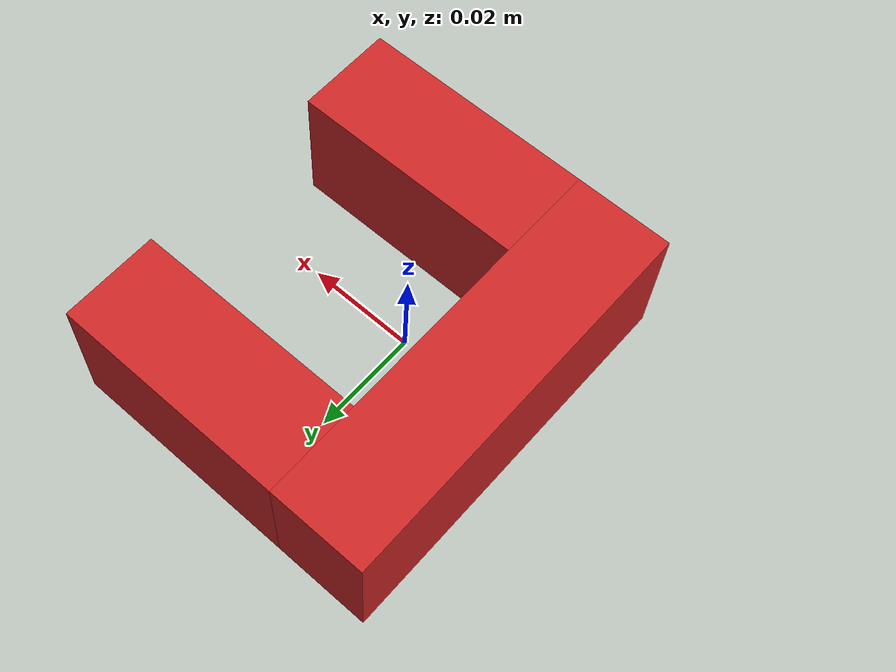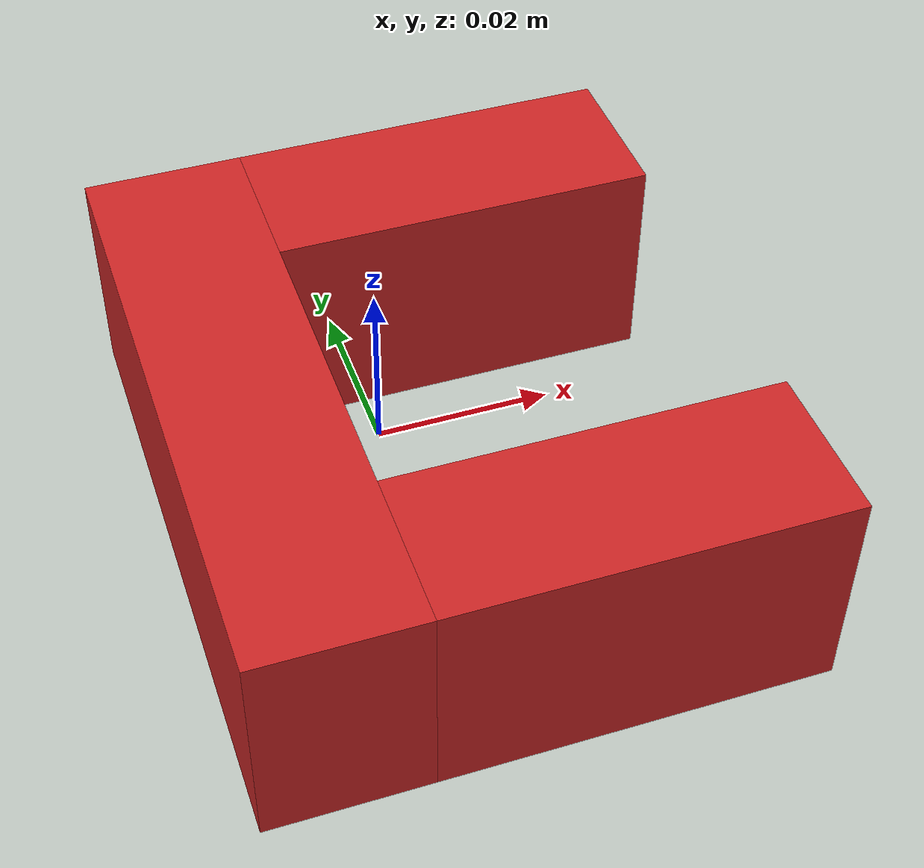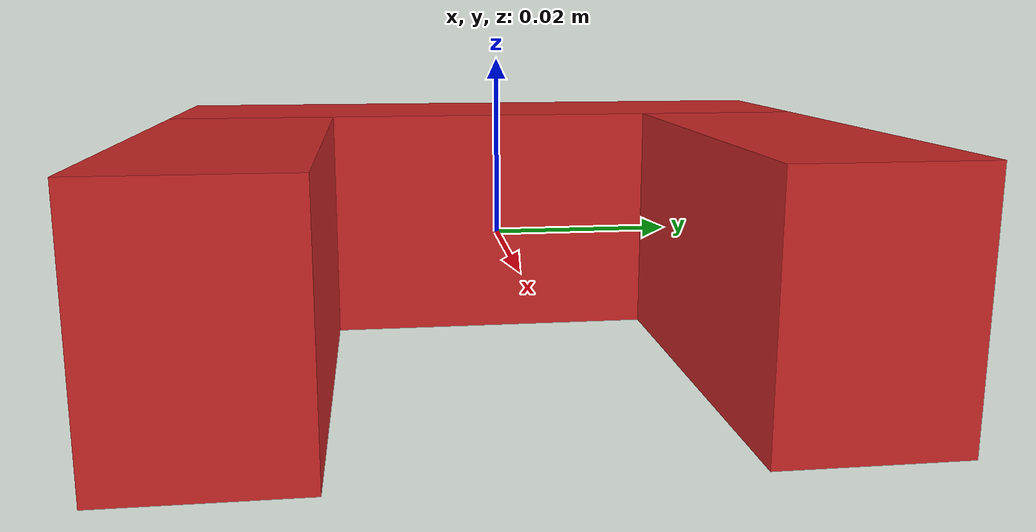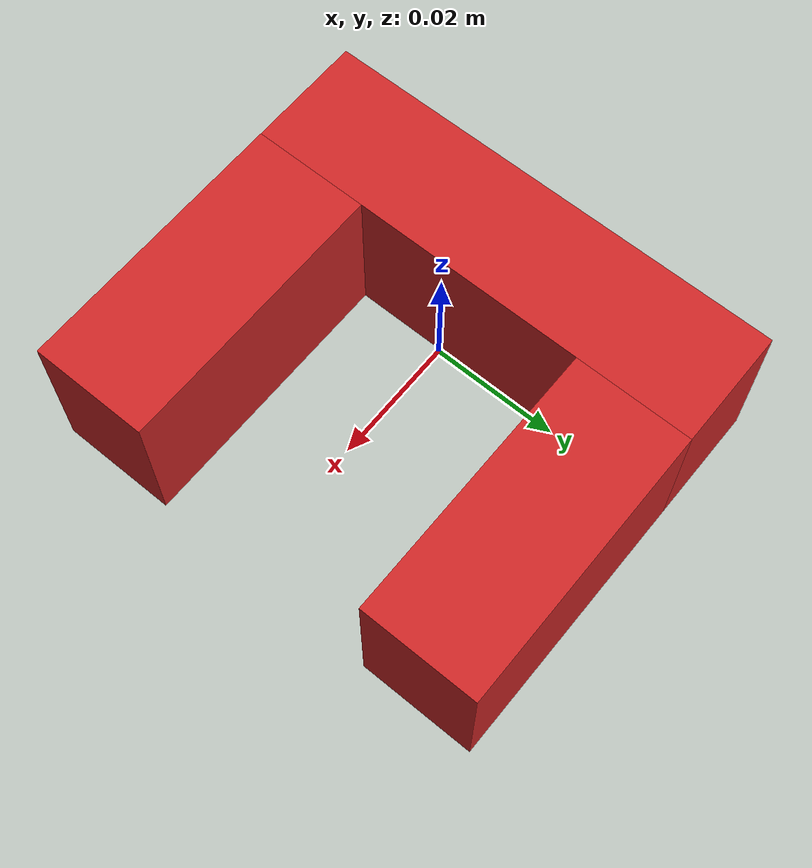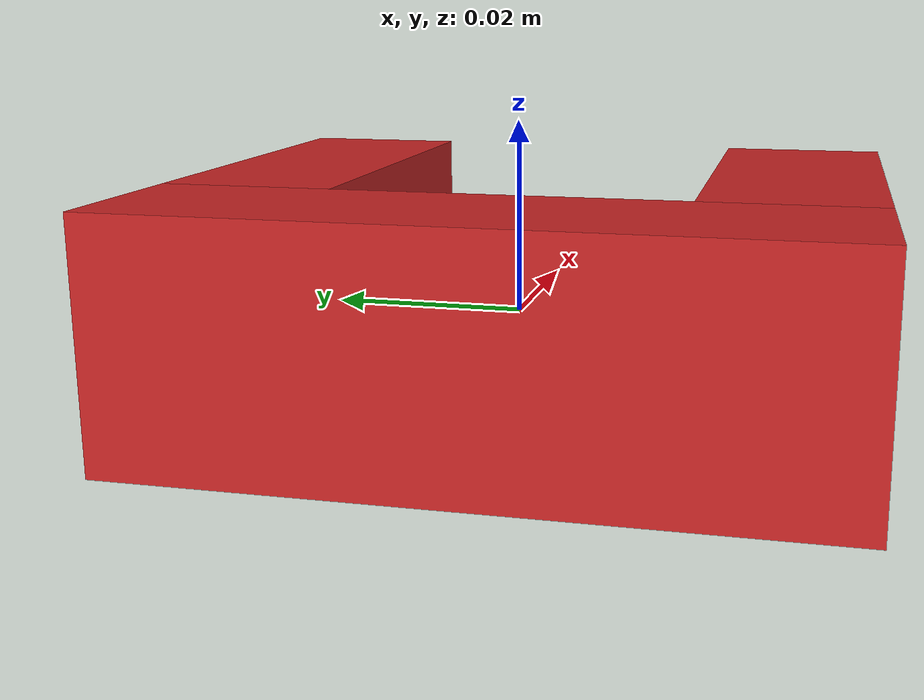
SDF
<?xml version='1.0'?>
<sdf version='1.6'>
  <model name='C_shape_small'>
    <link name='link'>
      <inertial>
        <mass>0.0844</mass>
        <inertia>
          <ixx>0.000071</ixx> <ixy>0</ixy> <ixz>0</ixz>
          <iyy>0.000071</iyy> <iyz>0</iyz>
          <izz>0.000142</izz>
        </inertia>
      </inertial>

      <visual name='spine_vis'>
        <pose>-0.015000 0.000000 0.000000 0 0 0</pose>
        <geometry>
           <box><size>0.018750 0.075000 0.026250</size></box>
        </geometry>
        <material><script><name>Gazebo/Red</name></script></material>
      </visual>
      <collision name='spine_col'>
        <pose>-0.015000 0.000000 0.000000 0 0 0</pose>
        <geometry>
           <box><size>0.018750 0.075000 0.026250</size></box>
        </geometry>
        <surface>
           <friction><ode><mu>100.0</mu><mu2>100.0</mu2></ode></friction>
           <contact><ode><kp>100000.0</kp><kd>1.0</kd><min_depth>0.001</min_depth></ode></contact>
        </surface>
      </collision>

      <visual name='top_vis'>
        <pose>0.016875 0.028125 0.000000 0 0 0</pose>
        <geometry>
           <box><size>0.045000 0.018750 0.026250</size></box>
        </geometry>
        <material><script><name>Gazebo/Red</name></script></material>
      </visual>
      <collision name='top_col'>
        <pose>0.016875 0.028125 0.000000 0 0 0</pose>
        <geometry>
           <box><size>0.045000 0.018750 0.026250</size></box>
        </geometry>
        <surface>
           <friction><ode><mu>100.0</mu><mu2>100.0</mu2></ode></friction>
           <contact><ode><kp>100000.0</kp><kd>1.0</kd><min_depth>0.001</min_depth></ode></contact>
        </surface>
      </collision>

      <visual name='bot_vis'>
        <pose>0.016875 -0.028125 0.000000 0 0 0</pose>
        <geometry>
           <box><size>0.045000 0.018750 0.026250</size></box>
        </geometry>
        <material><script><name>Gazebo/Red</name></script></material>
      </visual>
      <collision name='bot_col'>
        <pose>0.016875 -0.028125 0.000000 0 0 0</pose>
        <geometry>
           <box><size>0.045000 0.018750 0.026250</size></box>
        </geometry>
        <surface>
           <friction><ode><mu>100.0</mu><mu2>100.0</mu2></ode></friction>
           <contact><ode><kp>100000.0</kp><kd>1.0</kd><min_depth>0.001</min_depth></ode></contact>
        </surface>
      </collision>

    </link>
  </model>
</sdf>
